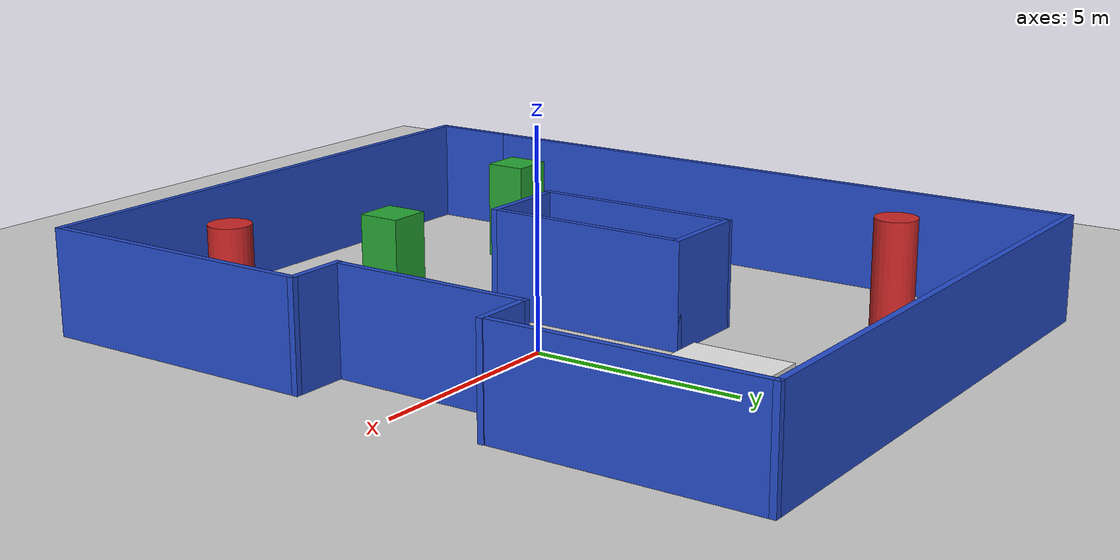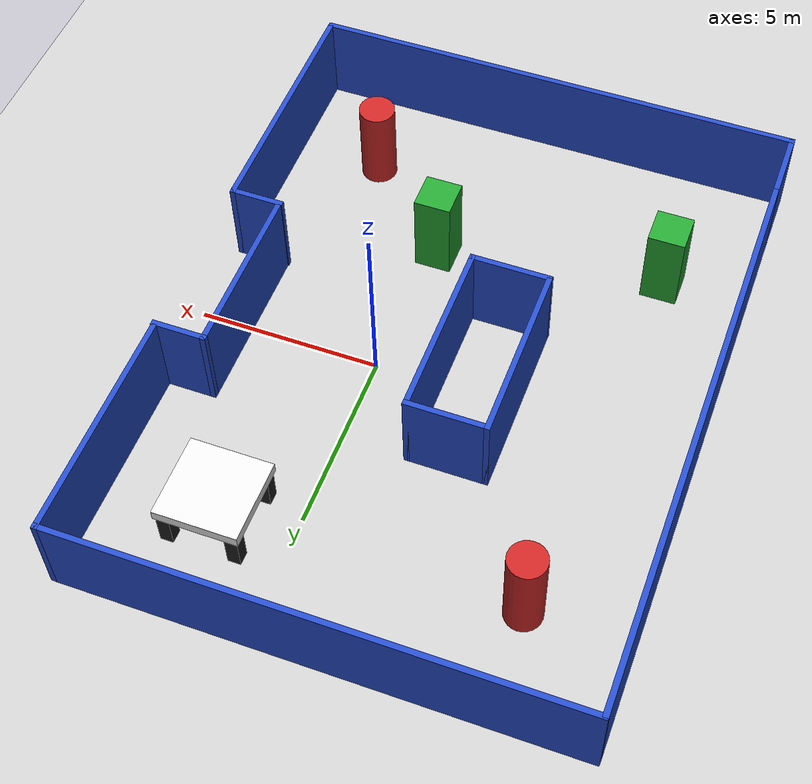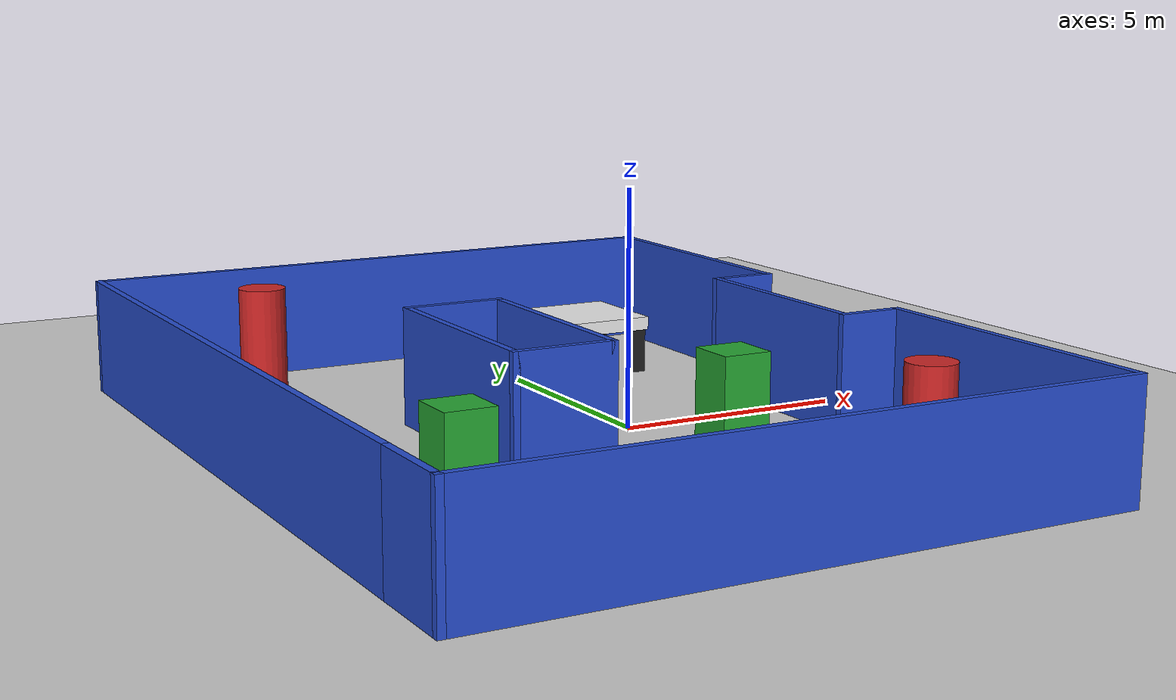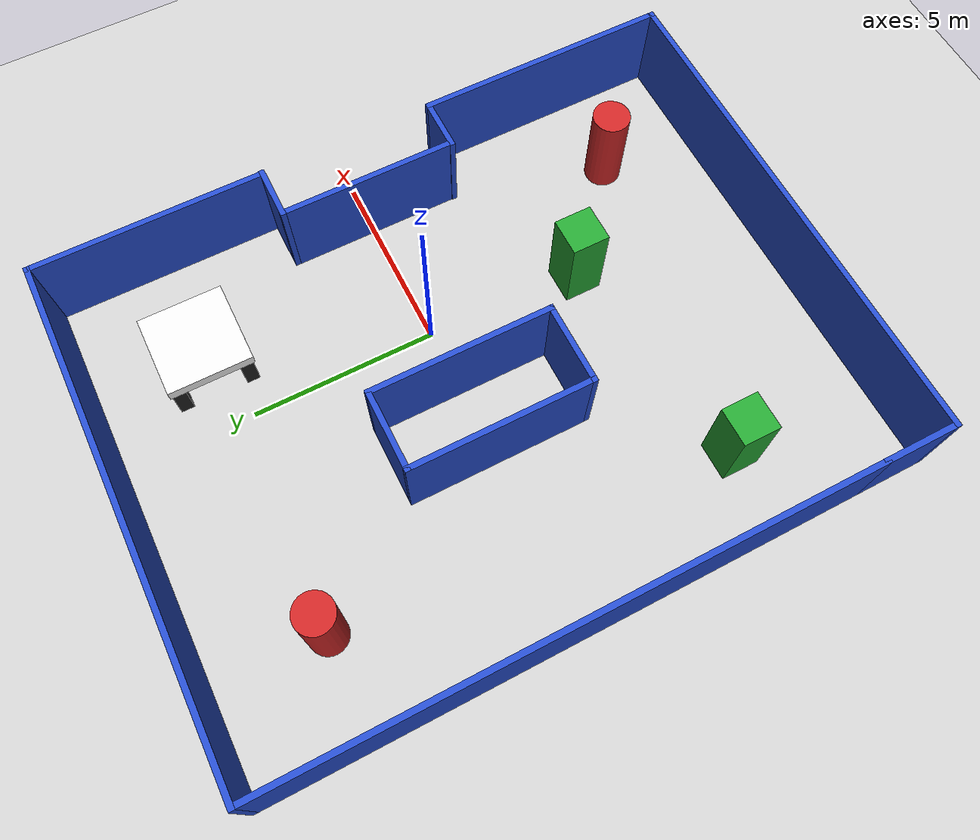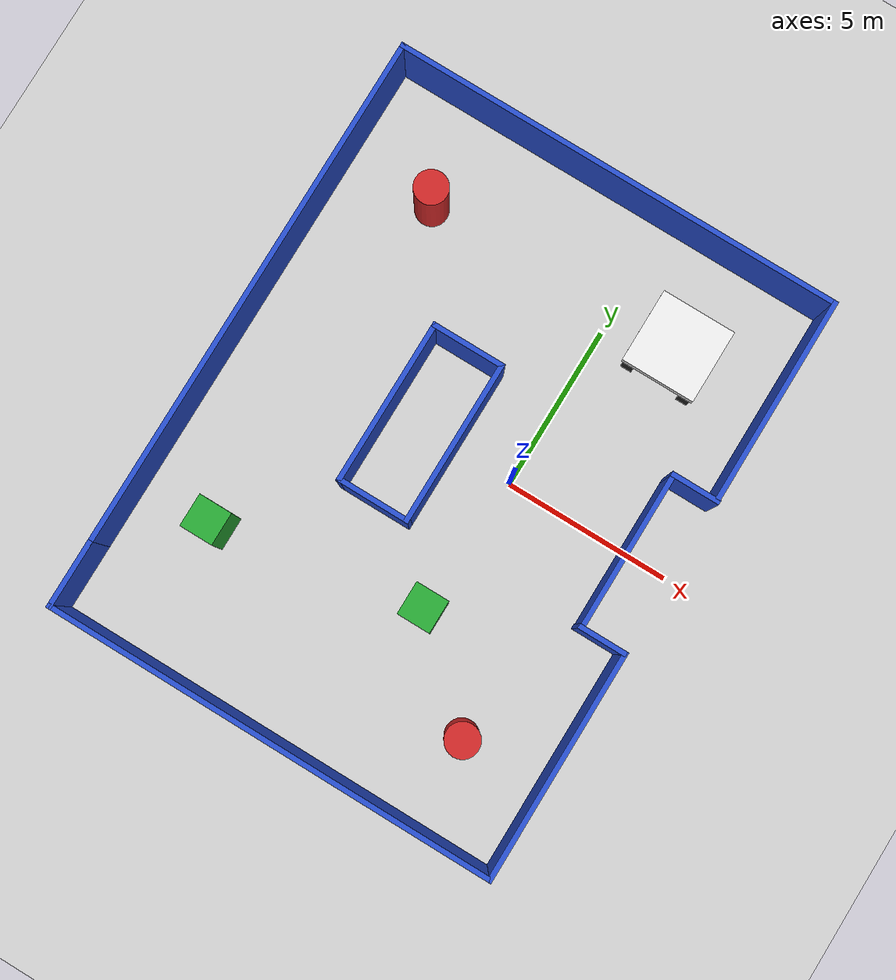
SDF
<sdf version="1.7">
 <world name="default">
  <light name="sun" type="directional">
   <pose>0 0 10 0 -0 0</pose>
   <diffuse>0.8 0.8 0.8 1</diffuse>
   <specular>0.2 0.2 0.2 1</specular>
   <attenuation>
    <range>1000</range>
    <constant>0.9</constant>
    <linear>0.01</linear>
    <quadratic>0.001</quadratic>
   </attenuation>
   <direction>-0.5 0.1 -0.9</direction>
   <spot><inner_angle>0</inner_angle><outer_angle>0</outer_angle><falloff>0</falloff></spot>
  </light>
  <model name="ground_plane">
   <static>1</static>
   <link name="link">
    <collision name="collision">
     <geometry><plane><normal>0 0 1</normal><size>100 100</size></plane></geometry>
     <surface><friction><ode><mu>100</mu><mu2>50</mu2></ode></friction></surface>
    </collision>
    <visual name="visual">
     <cast_shadows>0</cast_shadows>
     <geometry><plane><normal>0 0 1</normal><size>100 100</size></plane></geometry>
     <material>
      <script><uri>file://media/materials/scripts/gazebo.material</uri><name>Gazebo/Grey</name></script>
     </material>
    </visual>
   </link>
  </model>
  <gravity>0 0 -9.8</gravity>
  <magnetic_field>6e-06 2.3e-05 -4.2e-05</magnetic_field>
  <atmosphere type="adiabatic"/>
  <physics type="ode">
   <max_step_size>0.001</max_step_size>
   <real_time_factor>1</real_time_factor>
   <real_time_update_rate>1000</real_time_update_rate>
  </physics>
  <scene><ambient>0.4 0.4 0.4 1</ambient><background>0.7 0.7 0.7 1</background><shadows>1</shadows></scene>
  <model name="mini">
   <pose>-1.82551 -0.3962 0 0 -0 0</pose>
   <link name="Wall_10">
    <collision name="Wall_10_Collision">
     <geometry><box><size>13.75 0.15 2.5</size></box></geometry>
     <pose>0 0 1.25 0 -0 0</pose>
    </collision>
    <visual name="Wall_10_Visual">
     <pose>0 0 1.25 0 -0 0</pose>
     <geometry><box><size>13.75 0.15 2.5</size></box></geometry>
     <material>
      <script><uri>file://media/materials/scripts/gazebo.material</uri><name>Gazebo/Blue</name></script>
      <ambient>1 1 1 1</ambient>
     </material>
    </visual>
    <pose>-0.01058 8.9 0 0 -0 3.14159</pose>
   </link>
   <link name="Wall_11">
    <collision name="Wall_11_Collision">
     <geometry><box><size>16 0.15 2.5</size></box></geometry>
     <pose>0 0 1.25 0 -0 0</pose>
    </collision>
    <visual name="Wall_11_Visual">
     <pose>0 0 1.25 0 -0 0</pose>
     <geometry><box><size>16 0.15 2.5</size></box></geometry>
     <material>
      <script><uri>file://media/materials/scripts/gazebo.material</uri><name>Gazebo/Blue</name></script>
      <ambient>1 1 1 1</ambient>
     </material>
    </visual>
    <pose>-6.81058 0.975 0 0 -0 -1.5708</pose>
   </link>
   <link name="Wall_13">
    <collision name="Wall_13_Collision">
     <geometry><box><size>13.75 0.15 2.5</size></box></geometry>
     <pose>0 0 1.25 0 -0 0</pose>
    </collision>
    <visual name="Wall_13_Visual">
     <pose>0 0 1.25 0 -0 0</pose>
     <geometry><box><size>13.75 0.15 2.5</size></box></geometry>
     <material>
      <script><uri>file://media/materials/scripts/gazebo.material</uri><name>Gazebo/Blue</name></script>
      <ambient>1 1 1 1</ambient>
     </material>
    </visual>
    <pose>-0.01058 -8.9 0 0 -0 3.14159</pose>
   </link>
   <link name="Wall_14">
    <collision name="Wall_14_Collision">
     <geometry><box><size>2.1 0.15 2.5</size></box></geometry>
     <pose>0 0 1.25 0 -0 0</pose>
    </collision>
    <visual name="Wall_14_Visual">
     <pose>0 0 1.25 0 -0 0</pose>
     <geometry><box><size>2.1 0.15 2.5</size></box></geometry>
     <material>
      <script><uri>file://media/materials/scripts/gazebo.material</uri><name>Gazebo/Blue</name></script>
      <ambient>1 1 1 1</ambient>
     </material>
    </visual>
    <pose>-6.81058 -7.925 0 0 -0 1.5708</pose>
   </link>
   <link name="Wall_2">
    <collision name="Wall_2_Collision">
     <geometry><box><size>7 0.15 2.5</size></box></geometry>
     <pose>0 0 1.25 0 -0 0</pose>
    </collision>
    <visual name="Wall_2_Visual">
     <pose>0 0 1.25 0 -0 0</pose>
     <geometry><box><size>7 0.15 2.5</size></box></geometry>
     <material>
      <script><uri>file://media/materials/scripts/gazebo.material</uri><name>Gazebo/Blue</name></script>
      <ambient>1 1 1 1</ambient>
     </material>
    </visual>
    <pose>6.78942 -5.475 0 0 -0 1.5708</pose>
   </link>
   <link name="Wall_24">
    <collision name="Wall_24_Collision">
     <geometry><box><size>4.75 0.15 2.5</size></box></geometry>
     <pose>0 0 1.25 0 -0 0</pose>
    </collision>
    <visual name="Wall_24_Visual">
     <pose>0 0 1.25 0 -0 0</pose>
     <geometry><box><size>4.75 0.15 2.5</size></box></geometry>
     <material>
      <script><uri>file://media/materials/scripts/gazebo.material</uri><name>Gazebo/Blue</name></script>
      <ambient>1 1 1 1</ambient>
     </material>
    </visual>
    <pose>5.46058 0.383002 0 0 -0 -1.5708</pose>
   </link>
   <link name="Wall_26">
    <collision name="Wall_26_Collision">
     <geometry><box><size>1.5 0.15 2.5</size></box></geometry>
     <pose>0 0 1.25 0 -0 0</pose>
    </collision>
    <visual name="Wall_26_Visual">
     <pose>0 0 1.25 0 -0 0</pose>
     <geometry><box><size>1.5 0.15 2.5</size></box></geometry>
     <material>
      <script><uri>file://media/materials/scripts/gazebo.material</uri><name>Gazebo/Blue</name></script>
      <ambient>1 1 1 1</ambient>
     </material>
    </visual>
    <pose>6.13558 2.683 0 0 -0 0</pose>
   </link>
   <link name="Wall_28">
    <collision name="Wall_28_Collision">
     <geometry><box><size>1.5 0.15 2.5</size></box></geometry>
     <pose>0 0 1.25 0 -0 0</pose>
    </collision>
    <visual name="Wall_28_Visual">
     <pose>0 0 1.25 0 -0 0</pose>
     <geometry><box><size>1.5 0.15 2.5</size></box></geometry>
     <material>
      <script><uri>file://media/materials/scripts/gazebo.material</uri><name>Gazebo/Blue</name></script>
      <ambient>1 1 1 1</ambient>
     </material>
    </visual>
    <pose>6.11442 -2.05 0 0 -0 3.14159</pose>
   </link>
   <link name="Wall_30">
    <collision name="Wall_30_Collision">
     <geometry><box><size>2.25 0.15 2.5</size></box></geometry>
     <pose>0 0 1.25 0 -0 0</pose>
    </collision>
    <visual name="Wall_30_Visual">
     <pose>0 0 1.25 0 -0 0</pose>
     <geometry><box><size>2.25 0.15 2.5</size></box></geometry>
     <material>
      <script><uri>file://media/materials/scripts/gazebo.material</uri><name>Gazebo/Blue</name></script>
      <ambient>1 1 1 1</ambient>
     </material>
    </visual>
    <pose>-1.01058 2.8 0 0 -0 0</pose>
   </link>
   <link name="Wall_31">
    <collision name="Wall_31_Collision">
     <geometry><box><size>5 0.15 2.5</size></box></geometry>
     <pose>0 0 1.25 0 -0 0</pose>
    </collision>
    <visual name="Wall_31_Visual">
     <pose>0 0 1.25 0 -0 0</pose>
     <geometry><box><size>5 0.15 2.5</size></box></geometry>
     <material>
      <script><uri>file://media/materials/scripts/gazebo.material</uri><name>Gazebo/Blue</name></script>
      <ambient>1 1 1 1</ambient>
     </material>
    </visual>
    <pose>0.03942 0.375 0 0 -0 -1.5708</pose>
   </link>
   <link name="Wall_32">
    <collision name="Wall_32_Collision">
     <geometry><box><size>2.25 0.15 2.5</size></box></geometry>
     <pose>0 0 1.25 0 -0 0</pose>
    </collision>
    <visual name="Wall_32_Visual">
     <pose>0 0 1.25 0 -0 0</pose>
     <geometry><box><size>2.25 0.15 2.5</size></box></geometry>
     <material>
      <script><uri>file://media/materials/scripts/gazebo.material</uri><name>Gazebo/Blue</name></script>
      <ambient>1 1 1 1</ambient>
     </material>
    </visual>
    <pose>-1.01058 -2.05 0 0 -0 3.14159</pose>
   </link>
   <link name="Wall_7">
    <collision name="Wall_7_Collision">
     <geometry><box><size>5 0.15 2.5</size></box></geometry>
     <pose>0 0 1.25 0 -0 0</pose>
    </collision>
    <visual name="Wall_7_Visual">
     <pose>0 0 1.25 0 -0 0</pose>
     <geometry><box><size>5 0.15 2.5</size></box></geometry>
     <material>
      <script><uri>file://media/materials/scripts/gazebo.material</uri><name>Gazebo/Blue</name></script>
      <ambient>1 1 1 1</ambient>
     </material>
    </visual>
    <pose>-2.06058 0.375 0 0 -0 1.5708</pose>
   </link>
   <link name="Wall_9">
    <collision name="Wall_9_Collision">
     <geometry><box><size>6.25 0.15 2.5</size></box></geometry>
     <pose>0 0 1.25 0 -0 0</pose>
    </collision>
    <visual name="Wall_9_Visual">
     <pose>0 0 1.25 0 -0 0</pose>
     <geometry><box><size>6.25 0.15 2.5</size></box></geometry>
     <material>
      <script><uri>file://media/materials/scripts/gazebo.material</uri><name>Gazebo/Blue</name></script>
      <ambient>1 1 1 1</ambient>
     </material>
    </visual>
    <pose>6.78942 5.85 0 0 -0 1.5708</pose>
   </link>
   <static>1</static>
  </model>
  <model name="unit_box">
   <pose>-6.35708 -5.20828 1.19278 2e-06 2e-06 0.000399</pose>
   <link name="link">
    <inertial>
     <mass>1</mass>
     <inertia>
      <ixx>0.166667</ixx>
      <ixy>0</ixy>
      <ixz>0</ixz>
      <iyy>0.166667</iyy>
      <iyz>0</iyz>
      <izz>0.166667</izz>
     </inertia>
    </inertial>
    <collision name="collision"><geometry><box><size>1 1 2.38557</size></box></geometry></collision>
    <visual name="visual">
     <geometry><box><size>1 1 2.38557</size></box></geometry>
     <material>
      <script><name>Gazebo/Green</name><uri>file://media/materials/scripts/gazebo.material</uri></script>
     </material>
    </visual>
   </link>
  </model>
  <model name="unit_box_0">
   <pose>-0.213406 -4.18207 1.24325 -3e-06 -0 0.000339</pose>
   <link name="link">
    <inertial>
     <mass>1</mass>
     <inertia>
      <ixx>0.166667</ixx>
      <ixy>0</ixy>
      <ixz>0</ixz>
      <iyy>0.166667</iyy>
      <iyz>0</iyz>
      <izz>0.166667</izz>
     </inertia>
    </inertial>
    <collision name="collision"><geometry><box><size>1 1 2.4865</size></box></geometry></collision>
    <visual name="visual">
     <geometry><box><size>1 1 2.4865</size></box></geometry>
     <material>
      <script><name>Gazebo/Green</name><uri>file://media/materials/scripts/gazebo.material</uri></script>
     </material>
    </visual>
   </link>
  </model>
  <model name="unit_cylinder_0">
   <pose>2.48703 -6.6036 1.22493 0 -0 9e-06</pose>
   <link name="link">
    <inertial>
     <mass>1</mass>
     <inertia><ixx>0.145833</ixx><ixy>0</ixy><ixz>0</ixz><iyy>0.145833</iyy><iyz>0</iyz><izz>0.125</izz></inertia>
    </inertial>
    <collision name="collision">
     <geometry><cylinder><radius>0.5</radius><length>2.44987</length></cylinder></geometry>
    </collision>
    <visual name="visual">
     <geometry><cylinder><radius>0.5</radius><length>2.44987</length></cylinder></geometry>
     <material>
      <script><name>Gazebo/Red</name><uri>file://media/materials/scripts/gazebo.material</uri></script>
     </material>
    </visual>
   </link>
  </model>
  <model name="unit_cylinder_1">
   <pose>-5.91684 5.54017 1.29389 0 -0 1e-06</pose>
   <link name="link">
    <inertial>
     <mass>1</mass>
     <inertia><ixx>0.145833</ixx><ixy>0</ixy><ixz>0</ixz><iyy>0.145833</iyy><iyz>0</iyz><izz>0.125</izz></inertia>
    </inertial>
    <collision name="collision">
     <geometry><cylinder><radius>0.5</radius><length>2.5878</length></cylinder></geometry>
    </collision>
    <visual name="visual">
     <geometry><cylinder><radius>0.5</radius><length>2.5878</length></cylinder></geometry>
     <material>
      <script><name>Gazebo/Red</name><uri>file://media/materials/scripts/gazebo.material</uri></script>
     </material>
    </visual>
   </link>
  </model>
  <model name="obstacle_table_custom">
   <static>1</static>
   <pose>2 5.56287 0 0 -0 0</pose>
   <link name="link">
    <visual name="top_visual">
     <pose>0 0 1.15 0 -0 0</pose>
     <geometry><box><size>2.25 2.25 0.3</size></box></geometry>
     <material>
      <script><uri>file://media/materials/scripts/gazebo.material</uri><name>Gazebo/White</name></script>
     </material>
    </visual>
    <collision name="top_collision">
     <pose>0 0 1.15 0 -0 0</pose>
     <geometry><box><size>2.25 2.25 0.3</size></box></geometry>
    </collision>
    <visual name="leg1_visual">
     <pose>0.9 0.9 0.5 0 -0 0</pose>
     <geometry><box><size>0.35 0.35 1</size></box></geometry>
     <material>
      <script><uri>file://media/materials/scripts/gazebo.material</uri><name>Gazebo/Black</name></script>
     </material>
    </visual>
    <collision name="leg1_collision">
     <pose>0.9 0.9 0.5 0 -0 0</pose>
     <geometry><box><size>0.35 0.35 1</size></box></geometry>
    </collision>
    <visual name="leg2_visual">
     <pose>0.9 -0.9 0.5 0 -0 0</pose>
     <geometry><box><size>0.35 0.35 1</size></box></geometry>
     <material>
      <script><name>Gazebo/Black</name><uri>file://media/materials/scripts/gazebo.material</uri></script>
     </material>
    </visual>
    <collision name="leg2_collision">
     <pose>0.9 -0.9 0.5 0 -0 0</pose>
     <geometry><box><size>0.35 0.35 1</size></box></geometry>
    </collision>
    <visual name="leg3_visual">
     <pose>-0.9 0.9 0.5 0 -0 0</pose>
     <geometry><box><size>0.35 0.35 1</size></box></geometry>
     <material>
      <script><name>Gazebo/Black</name><uri>file://media/materials/scripts/gazebo.material</uri></script>
     </material>
    </visual>
    <collision name="leg3_collision">
     <pose>-0.9 0.9 0.5 0 -0 0</pose>
     <geometry><box><size>0.35 0.35 1</size></box></geometry>
    </collision>
    <visual name="leg4_visual">
     <pose>-0.9 -0.9 0.5 0 -0 0</pose>
     <geometry><box><size>0.35 0.35 1</size></box></geometry>
     <material>
      <script><name>Gazebo/Black</name><uri>file://media/materials/scripts/gazebo.material</uri></script>
     </material>
    </visual>
    <collision name="leg4_collision">
     <pose>-0.9 -0.9 0.5 0 -0 0</pose>
     <geometry><box><size>0.35 0.35 1</size></box></geometry>
    </collision>
   </link>
  </model>
  <audio><device>default</device></audio>
  <spherical_coordinates>
   <surface_model>EARTH_WGS84</surface_model>
   <latitude_deg>0</latitude_deg>
   <longitude_deg>0</longitude_deg>
   <elevation>0</elevation>
   <heading_deg>0</heading_deg>
  </spherical_coordinates>
 </world>
</sdf>
